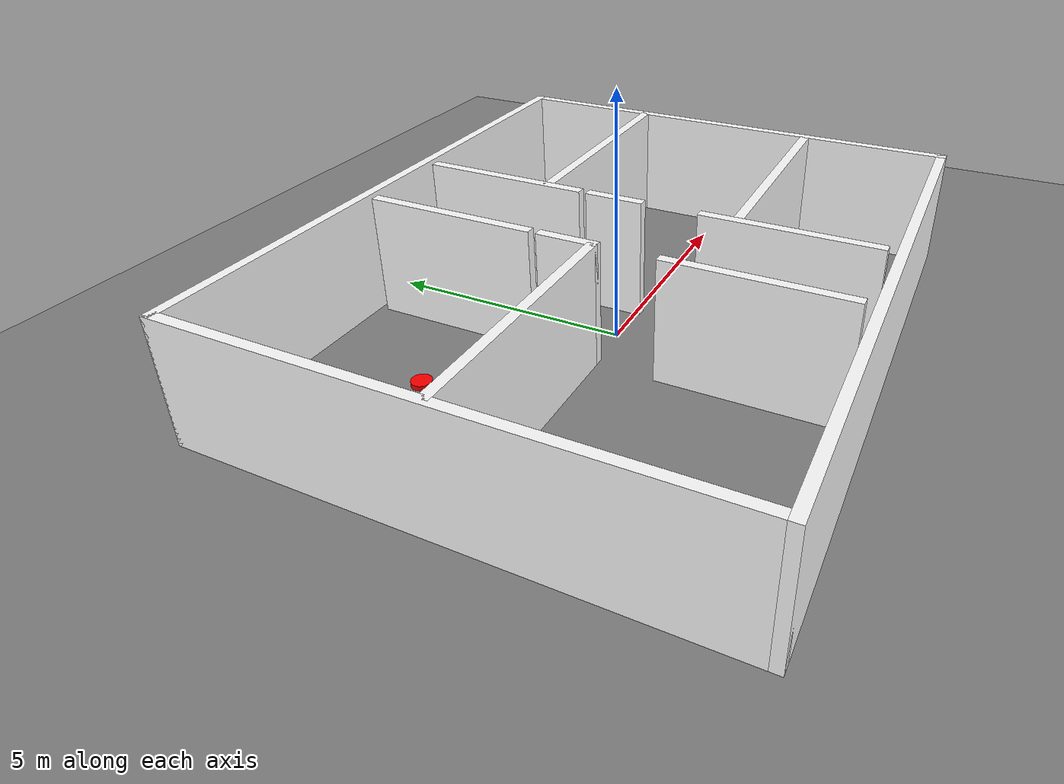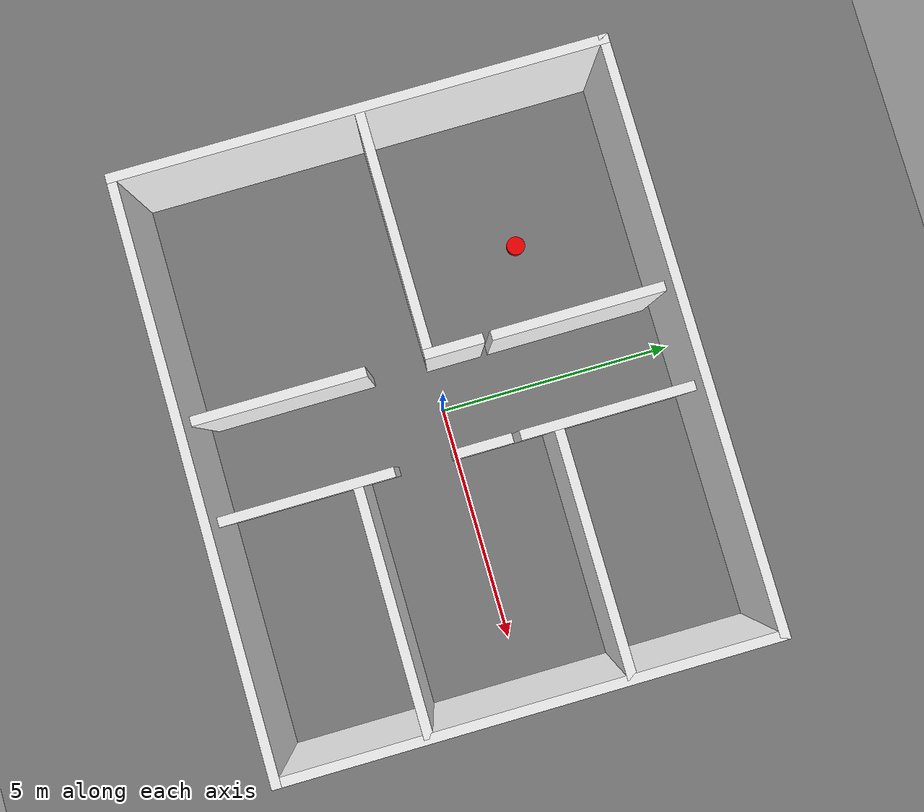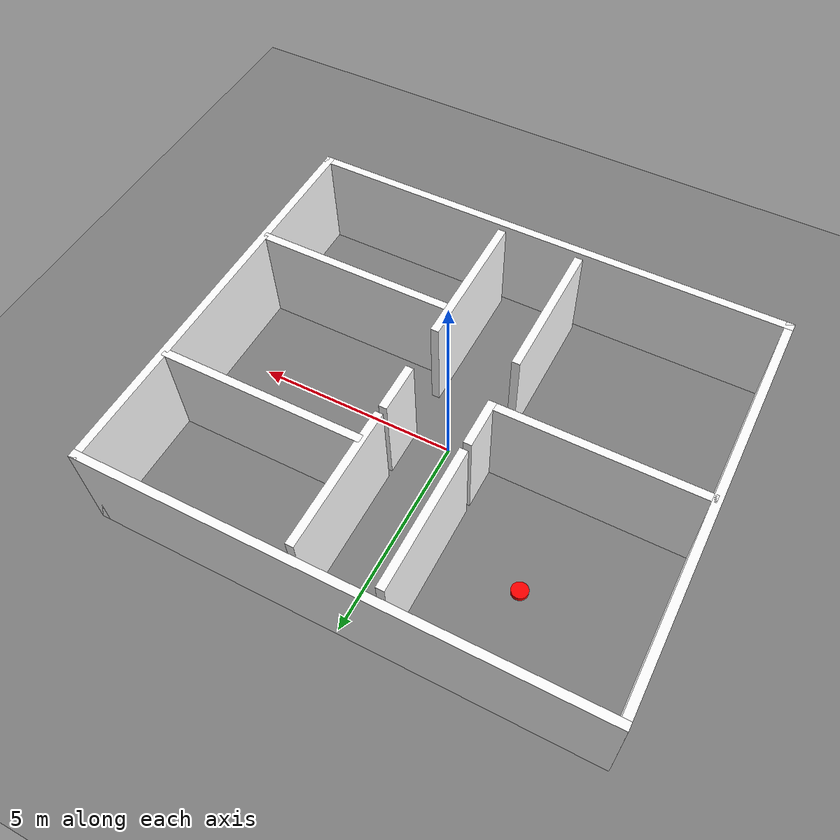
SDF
<?xml version="1.0" ?>
<sdf version="1.6">
  <world name="five_rooms_with_robot">
    <include>
      <uri>model://sun</uri>
    </include>

    <!-- Серый пол -->
    <model name="ground_plane">
      <static>true</static>
      <link name="ground_link">
        <collision name="ground_collision">
          <geometry>
            <plane>
              <normal>0 0 1</normal>
              <size>100 100</size>
            </plane>
          </geometry>
        </collision>
        <visual name="ground_visual">
          <geometry>
            <plane>
              <normal>0 0 1</normal>
              <size>100 100</size>
            </plane>
          </geometry>
          <material>
            <ambient>0.5 0.5 0.5 1</ambient>
            <diffuse>0.5 0.5 0.5 1</diffuse>
          </material>
        </visual>
      </link>
    </model>

    <!-- Здание -->
    <model name="building">
      <static>true</static>

      <!-- Внешние стены -->
      <link name="wall_back">
        <pose>0 -5 1.25 0 0 0</pose>
        <visual name="wall_back_visual">
          <geometry><box><size>12.2 0.2 2.5</size></box></geometry>
          <material><ambient>1 1 1 1</ambient></material>
        </visual>
        <collision name="wall_back_collision">
          <geometry><box><size>12.2 0.2 2.5</size></box></geometry>
        </collision>
      </link>
      <link name="wall_front">
        <pose>0 5 1.25 0 0 0</pose>
        <visual name="wall_front_visual">
          <geometry><box><size>12.2 0.2 2.5</size></box></geometry>
          <material><ambient>1 1 1 1</ambient></material>
        </visual>
        <collision name="wall_front_collision">
          <geometry><box><size>12.2 0.2 2.5</size></box></geometry>
        </collision>
      </link>
      <link name="wall_left">
        <pose>-6 0 1.25 0 0 0</pose>
        <visual name="wall_left_visual">
          <geometry><box><size>0.2 10.2 2.5</size></box></geometry>
          <material><ambient>1 1 1 1</ambient></material>
        </visual>
        <collision name="wall_left_collision">
          <geometry><box><size>0.2 10.2 2.5</size></box></geometry>
        </collision>
      </link>
      <link name="wall_right">
        <pose>6 0 1.25 0 0 0</pose>
        <visual name="wall_right_visual">
          <geometry><box><size>0.2 10.2 2.5</size></box></geometry>
          <material><ambient>1 1 1 1</ambient></material>
        </visual>
        <collision name="wall_right_collision">
          <geometry><box><size>0.2 10.2 2.5</size></box></geometry>
        </collision>
      </link>

      <!-- Разделительные стены -->
      <link name="left_divider">
        <pose>-3.5 0 1.25 0 0 0</pose>
        <visual name="left_divider_visual">
          <geometry><box><size>5 0.2 2.5</size></box></geometry>
          <material><ambient>1 1 1 1</ambient></material>
        </visual>
        <collision name="left_divider_collision">
          <geometry><box><size>5 0.2 2.5</size></box></geometry>
        </collision>
      </link>
      <link name="right_divider_top">
        <pose>3.5 2 1.25 0 0 0</pose>
        <visual name="right_divider_top_visual">
          <geometry><box><size>5 0.2 2.5</size></box></geometry>
          <material><ambient>1 1 1 1</ambient></material>
        </visual>
        <collision name="right_divider_top_collision">
          <geometry><box><size>5 0.2 2.5</size></box></geometry>
        </collision>
      </link>
      <link name="right_divider_bottom">
        <pose>3.5 -2 1.25 0 0 0</pose>
        <visual name="right_divider_bottom_visual">
          <geometry><box><size>5 0.2 2.5</size></box></geometry>
          <material><ambient>1 1 1 1</ambient></material>
        </visual>
        <collision name="right_divider_bottom_collision">
          <geometry><box><size>5 0.2 2.5</size></box></geometry>
        </collision>
      </link>

      <!-- Стены коридора с проёмами -->
      <link name="corr_left_top">
        <pose>-1 3 1.25 0 0 0</pose>
        <visual name="corr_left_top_visual">
          <geometry><box><size>0.2 3.5 2.5</size></box></geometry>
          <material><ambient>1 1 1 1</ambient></material>
        </visual>
        <collision name="corr_left_top_collision">
          <geometry><box><size>0.2 3.5 2.5</size></box></geometry>
        </collision>
      </link>
      <link name="corr_left_mid">
        <pose>-1 0.5 1.25 0 0 0</pose>
        <visual name="corr_left_mid_visual">
          <geometry><box><size>0.2 1.2 2.5</size></box></geometry>
          <material><ambient>1 1 1 1</ambient></material>
        </visual>
        <collision name="corr_left_mid_collision">
          <geometry><box><size>0.2 1.2 2.5</size></box></geometry>
        </collision>
      </link>
      <link name="corr_left_bottom">
        <pose>-1 -3 1.25 0 0 0</pose>
        <visual name="corr_left_bottom_visual">
          <geometry><box><size>0.2 3.5 2.5</size></box></geometry>
          <material><ambient>1 1 1 1</ambient></material>
        </visual>
        <collision name="corr_left_bottom_collision">
          <geometry><box><size>0.2 3.5 2.5</size></box></geometry>
        </collision>
      </link>

      <link name="corr_right_top">
        <pose>1 3 1.25 0 0 0</pose>
        <visual name="corr_right_top_visual">
          <geometry><box><size>0.2 3.5 2.5</size></box></geometry>
          <material><ambient>1 1 1 1</ambient></material>
        </visual>
        <collision name="corr_right_top_collision">
          <geometry><box><size>0.2 3.5 2.5</size></box></geometry>
        </collision>
      </link>
      <link name="corr_right_mid">
        <pose>1 0.5 1.25 0 0 0</pose>
        <visual name="corr_right_mid_visual">
          <geometry><box><size>0.2 1.2 2.5</size></box></geometry>
          <material><ambient>1 1 1 1</ambient></material>
        </visual>
        <collision name="corr_right_mid_collision">
          <geometry><box><size>0.2 1.2 2.5</size></box></geometry>
        </collision>
      </link>
      <link name="corr_right_bottom">
        <pose>1 -3 1.25 0 0 0</pose>
        <visual name="corr_right_bottom_visual">
          <geometry><box><size>0.2 3.5 2.5</size></box></geometry>
          <material><ambient>1 1 1 1</ambient></material>
        </visual>
        <collision name="corr_right_bottom_collision">
          <geometry><box><size>0.2 3.5 2.5</size></box></geometry>
        </collision>
      </link>
    </model>

    <!-- Робот в центре левой верхней комнаты (x от -5 до -1, y от 0 до 5) -->
    <model name="robot">
      <pose>-3 2.5 0.05 0 0 0</pose>
      <link name="chassis">
        <visual name="visual">
          <geometry>
            <cylinder>
              <radius>0.2</radius>
              <length>0.1</length>
            </cylinder>
          </geometry>
          <material>
            <ambient>1 0 0 1</ambient>  <!-- красный -->
            <diffuse>1 0 0 1</diffuse>
          </material>
        </visual>
        <collision name="collision">
          <geometry>
            <cylinder>
              <radius>0.2</radius>
              <length>0.1</length>
            </cylinder>
          </geometry>
        </collision>
      </link>
    </model>

  </world>
</sdf>
